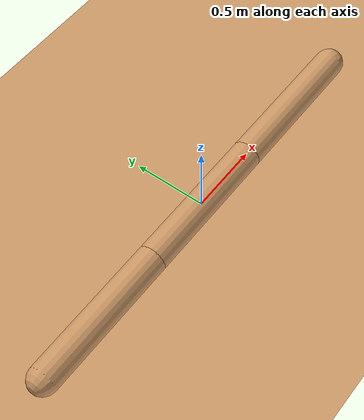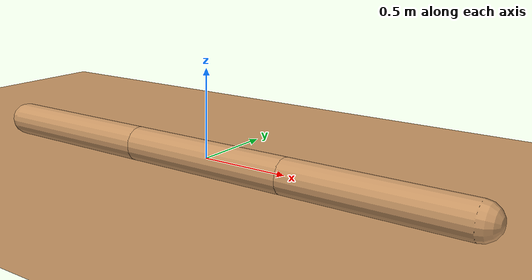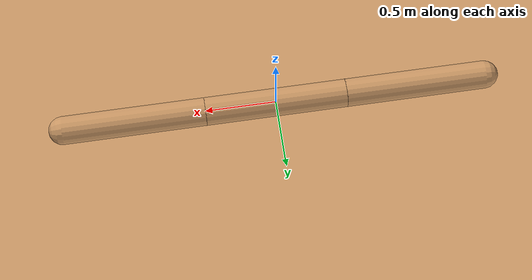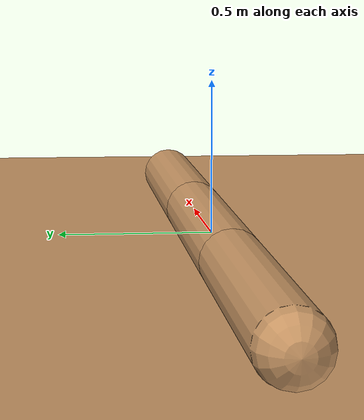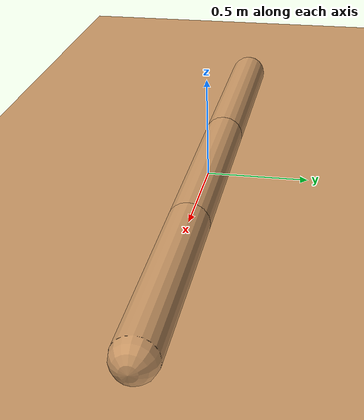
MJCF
<mujoco model="swimmer">
  <compiler angle="degree" coordinate="local" inertiafromgeom="true"/>
  <option density="4000" timestep="0.01" iterations="8" ls_iterations="6" viscosity="0.1"/>
  <default>
    <geom conaffinity="0" condim="3" contype="0" material="geom" rgba="0.8 0.6 .4 1"/>
    <joint armature='0.1'  />
  </default>
  <asset>
    <texture builtin="gradient" height="100" rgb1=".45 .58 .62" rgb2="0.08 0.12 0.15" type="skybox" width="100"/>
    <texture builtin="flat" height="1278" mark="cross" markrgb="1 1 1" name="texgeom" random="0.01" rgb1="0.8 0.6 0.4" rgb2="0.8 0.6 0.4" type="cube" width="127"/>
    <texture builtin="checker" height="100" name="texplane" rgb1="0.58 0.70 0.72" rgb2="0.52 0.64 0.66" type="2d" width="100"/>
    <material name="MatPlane" reflectance="0.25" shininess="0.15" specular="0.15" texrepeat="30 30" texture="texplane"/>
    <material name="geom" texture="texgeom" texuniform="true"/>
  </asset>
  <worldbody>
    <light cutoff="100" diffuse="1 1 1" dir="-0 0 -1.3" directional="true" exponent="1" pos="0 0 1.3" specular=".1 .1 .1"/>
    <geom conaffinity="1" condim="3" material="MatPlane" name="floor" pos="0 0 -0.1" size="40 40 0.1" type="plane"/>
    <camera name="fixedfar" pos="0 -5 5" zaxis="0 -1 1" mode="trackcom"/>

      <!--  ================= SWIMMER ================= /-->
    <body name="torso" pos="0 0 0">
      <site name="agent" rgba="1 0 0 .1"/>
      <camera name="vision" pos="0 0 .15" xyaxes="0 -1 0 .4 0 1" fovy="90"/>
      <camera name="vision_back" pos="0 0 .15" xyaxes="0 1 0 0 0 1" fovy="90"/>

      <camera name="track" mode="trackcom" pos="0 -3 3" xyaxes="1 0 0 0 1 1"/>
      <geom density="1000" fromto="1.5 0 0 0.5 0 0" size="0.1" type="capsule"/>
      <joint axis="1 0 0" name="slider1" pos="0 0 0" type="slide"/>
      <joint axis="0 1 0" name="slider2" pos="0 0 0" type="slide"/>
      <joint axis="0 0 1" name="rot" pos="0 0 0" type="hinge"/>
      <body name="mid" pos="0.5 0 0">
        <geom density="1000" fromto="0 0 0 -1 0 0" size="0.1" type="capsule"/>
        <joint axis="0 0 1" limited="true" name="rot2" pos="0 0 0" range="-100 100" type="hinge"/>
        <body name="back" pos="-1 0 0">
          <geom density="1000" fromto="0 0 0 -1 0 0" size="0.1" type="capsule"/>
          <joint axis="0 0 1" limited="true" name="rot3" pos="0 0 0" range="-100 100" type="hinge"/>
        </body>
      </body>
    </body>
  </worldbody>
<sensor>
    <accelerometer site="agent" name="accelerometer"/>
    <velocimeter site="agent" name="velocimeter"/>
    <gyro site="agent" name="gyro"/>
    <magnetometer site="agent" name="magnetometer"/>

    <!-- Used for intrinsic constraints -->
    <subtreecom body="torso" name="subtreecom"/>
    <subtreelinvel body="torso" name="subtreelinvel"/>
    <subtreeangmom body="torso" name="subtreeangmom"/>
  </sensor>
  <actuator>
    <motor ctrllimited="true" ctrlrange="-1 1" gear="150.0" joint="rot2"/>
    <motor ctrllimited="true" ctrlrange="-1 1" gear="150.0" joint="rot3"/>
  </actuator>
</mujoco>
